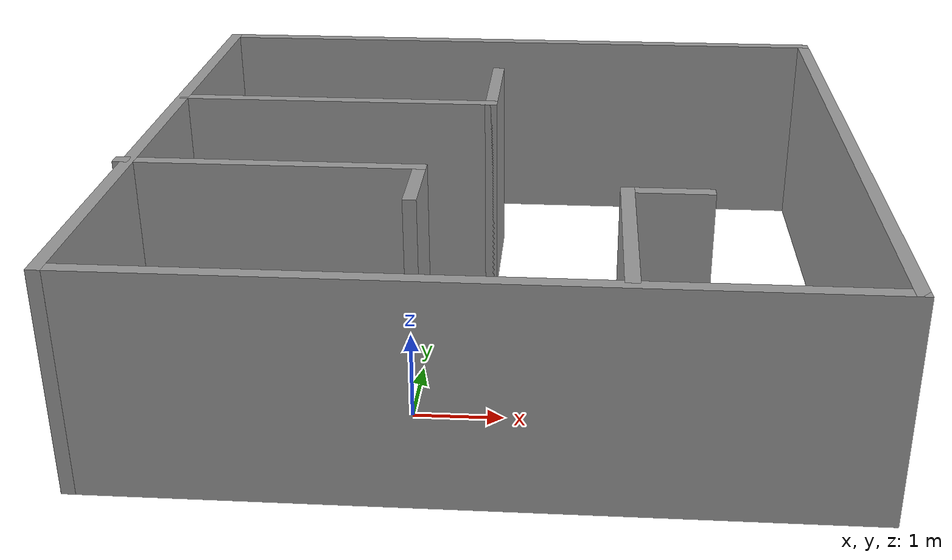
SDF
<?xml version='1.0'?>
<sdf version='1.7'>
  <model name='room'>
    <pose>0.74501 2.19 0 0 -0 0</pose>
    <link name='Wall_0'>
      <collision name='Wall_0_Collision'>
        <geometry>
          <box>
            <size>7.75 0.15 2.5</size>
          </box>
        </geometry>
        <pose>0 0 1.25 0 -0 0</pose>
      </collision>
      <visual name='Wall_0_Visual'>
        <pose>0 0 1.25 0 -0 0</pose>
        <geometry>
          <box>
            <size>7.75 0.15 2.5</size>
          </box>
        </geometry>
        <material>
          <script>
            <uri>file://media/materials/scripts/gazebo.material</uri>
            <name>Gazebo/Grey</name>
          </script>
          <ambient>1 1 1 1</ambient>
        </material>
        <meta>
          <layer>0</layer>
        </meta>
      </visual>
      <pose>-4.00501 0 0 0 -0 1.5708</pose>
    </link>
    <link name='Wall_10'>
      <collision name='Wall_10_Collision'>
        <geometry>
          <box>
            <size>1.5 0.15 2.5</size>
          </box>
        </geometry>
        <pose>0 0 1.25 0 -0 0</pose>
      </collision>
      <visual name='Wall_10_Visual'>
        <pose>0 0 1.25 0 -0 0</pose>
        <geometry>
          <box>
            <size>1.5 0.15 2.5</size>
          </box>
        </geometry>
        <material>
          <script>
            <uri>file://media/materials/scripts/gazebo.material</uri>
            <name>Gazebo/Grey</name>
          </script>
          <ambient>1 1 1 1</ambient>
        </material>
        <meta>
          <layer>0</layer>
        </meta>
      </visual>
      <pose>-0.111989 1.7657 0 0 -0 1.5708</pose>
    </link>
    <link name='Wall_14'>
      <collision name='Wall_14_Collision'>
        <geometry>
          <box>
            <size>2.25 0.15 2.5</size>
          </box>
        </geometry>
        <pose>0 0 1.25 0 -0 0</pose>
      </collision>
      <visual name='Wall_14_Visual'>
        <pose>0 0 1.25 0 -0 0</pose>
        <geometry>
          <box>
            <size>2.25 0.15 2.5</size>
          </box>
        </geometry>
        <material>
          <script>
            <uri>file://media/materials/scripts/gazebo.material</uri>
            <name>Gazebo/Grey</name>
          </script>
          <ambient>1 1 1 1</ambient>
        </material>
        <meta>
          <layer>0</layer>
        </meta>
      </visual>
      <pose>1.51765 -2.64733 0 0 -0 1.5708</pose>
    </link>
    <link name='Wall_15'>
      <collision name='Wall_15_Collision'>
        <geometry>
          <box>
            <size>1 0.15 2.5</size>
          </box>
        </geometry>
        <pose>0 0 1.25 0 -0 0</pose>
      </collision>
      <visual name='Wall_15_Visual'>
        <pose>0 0 1.25 0 -0 0</pose>
        <geometry>
          <box>
            <size>1 0.15 2.5</size>
          </box>
        </geometry>
        <material>
          <script>
            <uri>file://media/materials/scripts/gazebo.material</uri>
            <name>Gazebo/Grey</name>
          </script>
          <ambient>1 1 1 1</ambient>
        </material>
        <meta>
          <layer>0</layer>
        </meta>
      </visual>
      <pose>1.94265 -1.59733 0 0 -0 0</pose>
    </link>
    <link name='Wall_2'>
      <collision name='Wall_2_Collision'>
        <geometry>
          <box>
            <size>8.25 0.15 2.5</size>
          </box>
        </geometry>
        <pose>0 0 1.25 0 -0 0</pose>
      </collision>
      <visual name='Wall_2_Visual'>
        <pose>0 0 1.25 0 -0 0</pose>
        <geometry>
          <box>
            <size>8.25 0.15 2.5</size>
          </box>
        </geometry>
        <material>
          <script>
            <uri>file://media/materials/scripts/gazebo.material</uri>
            <name>Gazebo/Grey</name>
          </script>
          <ambient>1 1 1 1</ambient>
        </material>
        <meta>
          <layer>0</layer>
        </meta>
      </visual>
      <pose>0.04499 3.8 0 0 -0 0</pose>
    </link>
    <link name='Wall_3'>
      <collision name='Wall_3_Collision'>
        <geometry>
          <box>
            <size>7.75 0.15 2.5</size>
          </box>
        </geometry>
        <pose>0 0 1.25 0 -0 0</pose>
      </collision>
      <visual name='Wall_3_Visual'>
        <pose>0 0 1.25 0 -0 0</pose>
        <geometry>
          <box>
            <size>7.75 0.15 2.5</size>
          </box>
        </geometry>
        <material>
          <script>
            <uri>file://media/materials/scripts/gazebo.material</uri>
            <name>Gazebo/Grey</name>
          </script>
          <ambient>1 1 1 1</ambient>
        </material>
        <meta>
          <layer>0</layer>
        </meta>
      </visual>
      <pose>4.09499 0 0 0 -0 -1.5708</pose>
    </link>
    <link name='Wall_4'>
      <collision name='Wall_4_Collision'>
        <geometry>
          <box>
            <size>8.25 0.15 2.5</size>
          </box>
        </geometry>
        <pose>0 0 1.25 0 -0 0</pose>
      </collision>
      <visual name='Wall_4_Visual'>
        <pose>0 0 1.25 0 -0 0</pose>
        <geometry>
          <box>
            <size>8.25 0.15 2.5</size>
          </box>
        </geometry>
        <material>
          <script>
            <uri>file://media/materials/scripts/gazebo.material</uri>
            <name>Gazebo/Grey</name>
          </script>
          <ambient>1 1 1 1</ambient>
        </material>
        <meta>
          <layer>0</layer>
        </meta>
      </visual>
      <pose>0.04499 -3.8 0 0 -0 3.14159</pose>
    </link>
    <link name='Wall_6'>
      <collision name='Wall_6_Collision'>
        <geometry>
          <box>
            <size>3.5 0.15 2.5</size>
          </box>
        </geometry>
        <pose>0 0 1.25 0 -0 0</pose>
      </collision>
      <visual name='Wall_6_Visual'>
        <pose>0 0 1.25 0 -0 0</pose>
        <geometry>
          <box>
            <size>3.5 0.15 2.5</size>
          </box>
        </geometry>
        <material>
          <script>
            <uri>file://media/materials/scripts/gazebo.material</uri>
            <name>Gazebo/Grey</name>
          </script>
          <ambient>1 1 1 1</ambient>
        </material>
        <meta>
          <layer>0</layer>
        </meta>
      </visual>
      <pose>-2.41999 -1.09051 0 0 -0 0</pose>
    </link>
    <link name='Wall_7'>
      <collision name='Wall_7_Collision'>
        <geometry>
          <box>
            <size>1 0.15 2.5</size>
          </box>
        </geometry>
        <pose>0 0 1.25 0 -0 0</pose>
      </collision>
      <visual name='Wall_7_Visual'>
        <pose>0 0 1.25 0 -0 0</pose>
        <geometry>
          <box>
            <size>1 0.15 2.5</size>
          </box>
        </geometry>
        <material>
          <script>
            <uri>file://media/materials/scripts/gazebo.material</uri>
            <name>Gazebo/Grey</name>
          </script>
          <ambient>1 1 1 1</ambient>
        </material>
        <meta>
          <layer>0</layer>
        </meta>
      </visual>
      <pose>-0.74499 -1.51551 0 0 -0 -1.5708</pose>
    </link>
    <link name='Wall_9'>
      <collision name='Wall_9_Collision'>
        <geometry>
          <box>
            <size>4 0.15 2.5</size>
          </box>
        </geometry>
        <pose>0 0 1.25 0 -0 0</pose>
      </collision>
      <visual name='Wall_9_Visual'>
        <pose>0 0 1.25 0 -0 0</pose>
        <geometry>
          <box>
            <size>4 0.15 2.5</size>
          </box>
        </geometry>
        <material>
          <script>
            <uri>file://media/materials/scripts/gazebo.material</uri>
            <name>Gazebo/Grey</name>
          </script>
          <ambient>1 1 1 1</ambient>
        </material>
        <meta>
          <layer>0</layer>
        </meta>
      </visual>
      <pose>-2.03699 1.0907 0 0 -0 0</pose>
    </link>
    <static>1</static>
  </model>
</sdf>
